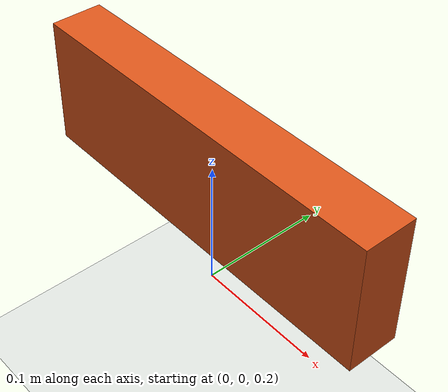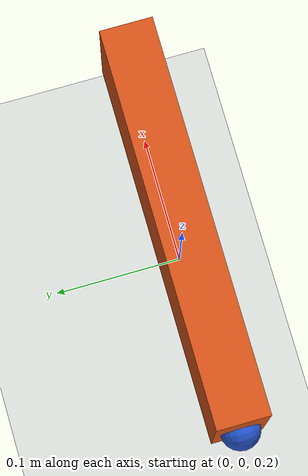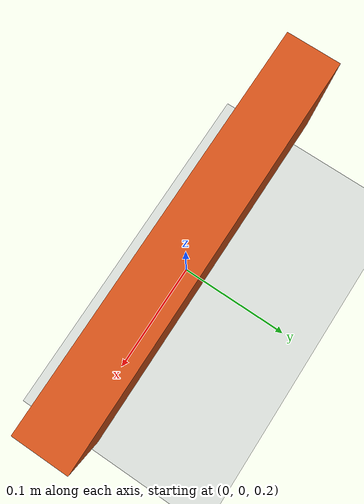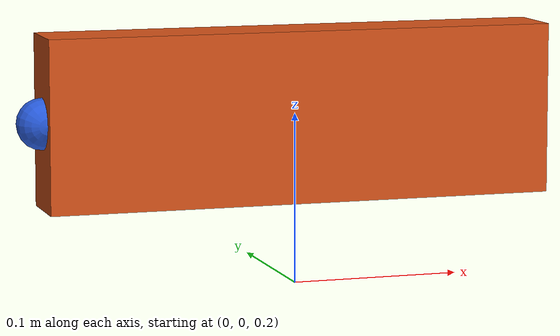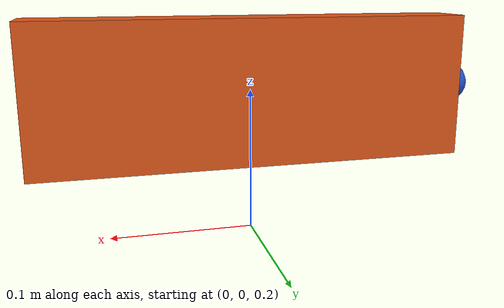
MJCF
<!-- BROKEN (debugging clinic, case 9): the box was meant to be yawed 90 degrees about z; it lies on its side. -->
<mujoco model="xyzw_quat">
  <compiler angle="radian" autolimits="true"/>
  <worldbody>
    <light pos="0 -1 2" dir="0 0.5 -1"/>
    <geom name="floor" type="plane" size="1 1 0.05" rgba=".86 .88 .86 1"/>
    <body name="box" pos="0 0 0.3" quat="0 0 0.7071068 0.7071068">
      <geom type="box" size="0.15 0.05 0.02" rgba=".85 .33 .1 1"/>
      <site name="front" pos="0.15 0 0" size="0.015" rgba=".15 .35 .85 1"/>
    </body>
  </worldbody>
</mujoco>
